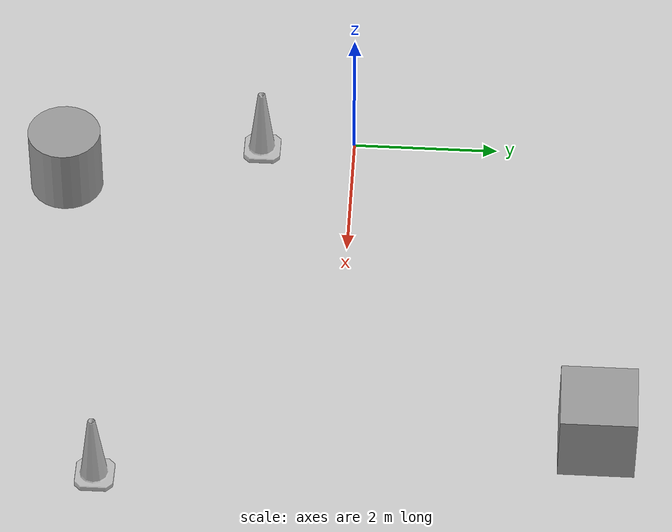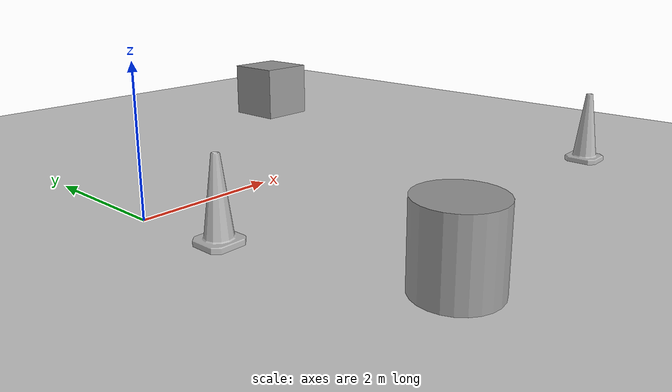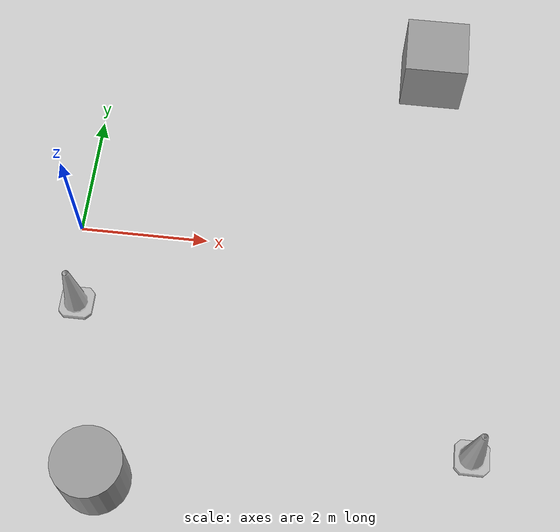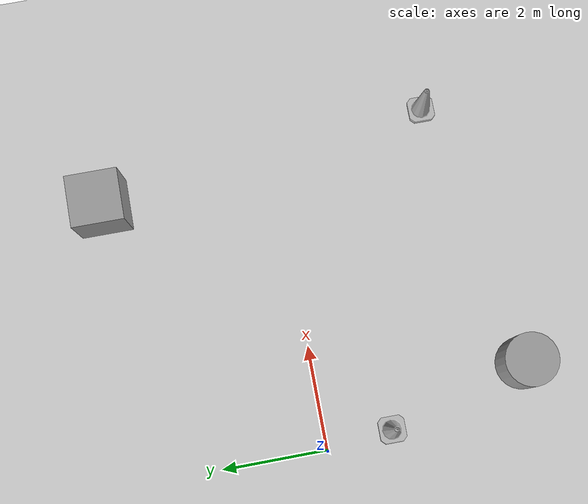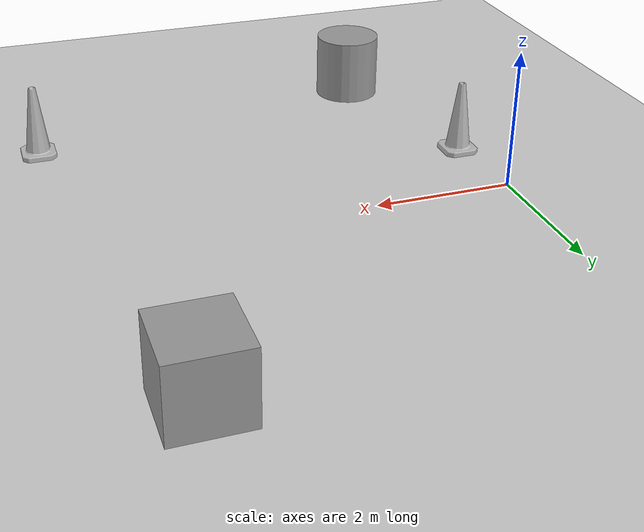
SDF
<?xml version="1.0" ?>
<sdf version="1.6">
  <world name="default">
    <light name='sun' type='directional'>
      <cast_shadows>1</cast_shadows>
      <pose>0 0 10 0 -0 0</pose>
      <diffuse>0.8 0.8 0.8 1</diffuse>
      <specular>0.2 0.2 0.2 1</specular>
      <direction>-0.5 0.1 -0.9</direction>
    </light>

    <physics type='ode'>
      <max_step_size>0.001</max_step_size>
      <real_time_factor>1</real_time_factor>
      <real_time_update_rate>1000</real_time_update_rate>
    </physics>

    <model name='ground_plane'>
      <static>true</static>
      <link name='link'>
        <collision name='collision'>
          <geometry>
            <plane>
              <normal>0 0 1</normal>
              <size>100 100</size>
            </plane>
          </geometry>
          <surface>
            <friction>
              <ode>
                <mu>1.0</mu>
                <mu2>1.0</mu2>
              </ode>
            </friction>
            <contact>
              <ode>
                <kp>1e+13</kp>
                <kd>1</kd>
              </ode>
            </contact>
          </surface>
        </collision>
        <visual name='visual'>
          <cast_shadows>0</cast_shadows>
          <geometry>
            <plane>
              <normal>0 0 1</normal>
              <size>100 100</size>
            </plane>
          </geometry>
          <material>
            <script>
              <uri>file://media/materials/scripts/gazebo.material</uri>
              <name>Gazebo/Grey</name>
            </script>
          </material>
        </visual>
      </link>
    </model>

    <model name='Construction Cone'>
      <link name='link'>
        <collision name='collision'>
          <geometry>
            <mesh>
              <scale>10 10 10</scale>
              <uri>model://construction_cone/meshes/construction_cone.dae</uri>
            </mesh>
          </geometry>
          <max_contacts>10</max_contacts>
          <surface>
            <contact>
              <ode/>
            </contact>
            <bounce/>
            <friction>
              <torsional>
                <ode/>
              </torsional>
              <ode/>
            </friction>
          </surface>
        </collision>
        <visual name='visual'>
          <geometry>
            <mesh>
              <scale>10 10 10</scale>
              <uri>model://construction_cone/meshes/construction_cone.dae</uri>
            </mesh>
          </geometry>
        </visual>
        <self_collide>0</self_collide>
        <inertial>
          <pose>0 0 0 0 -0 0</pose>
          <inertia>
            <ixx>1</ixx>
            <ixy>0</ixy>
            <ixz>0</ixz>
            <iyy>1</iyy>
            <iyz>0</iyz>
            <izz>1</izz>
          </inertia>
          <mass>1</mass>
        </inertial>
        <enable_wind>0</enable_wind>
        <kinematic>0</kinematic>
      </link>
      <pose>0.164671 -1.27985 0 0 -0 0</pose>
    </model>

    <model name='unit_box'>
      <pose>5.36831 3.441 0.5 0 -0 0</pose>
      <link name='link'>
        <inertial>
          <mass>1</mass>
          <inertia>
            <ixx>0.166667</ixx>
            <ixy>0</ixy>
            <ixz>0</ixz>
            <iyy>0.166667</iyy>
            <iyz>0</iyz>
            <izz>0.166667</izz>
          </inertia>
          <pose>0 0 0 0 -0 0</pose>
        </inertial>
        <collision name='collision'>
          <geometry>
            <box>
              <size>1 1 1</size>
            </box>
          </geometry>
          <max_contacts>10</max_contacts>
          <surface>
            <contact>
              <ode/>
            </contact>
            <bounce/>
            <friction>
              <torsional>
                <ode/>
              </torsional>
              <ode/>
            </friction>
          </surface>
        </collision>
        <visual name='visual'>
          <geometry>
            <box>
              <size>1 1 1</size>
            </box>
          </geometry>
          <material>
            <script>
              <name>Gazebo/Grey</name>
              <uri>file://media/materials/scripts/gazebo.material</uri>
            </script>
          </material>
        </visual>
        <self_collide>0</self_collide>
        <enable_wind>0</enable_wind>
        <kinematic>0</kinematic>
      </link>
    </model>

    <model name='unit_cylinder'>
      <pose>0.955087 -3.94505 0.5 0 -0 0</pose>
      <link name='link'>
        <inertial>
          <mass>1</mass>
          <inertia>
            <ixx>0.145833</ixx>
            <ixy>0</ixy>
            <ixz>0</ixz>
            <iyy>0.145833</iyy>
            <iyz>0</iyz>
            <izz>0.125</izz>
          </inertia>
          <pose>0 0 0 0 -0 0</pose>
        </inertial>
        <collision name='collision'>
          <geometry>
            <cylinder>
              <radius>0.5</radius>
              <length>1</length>
            </cylinder>
          </geometry>
          <max_contacts>10</max_contacts>
          <surface>
            <contact>
              <ode/>
            </contact>
            <bounce/>
            <friction>
              <torsional>
                <ode/>
              </torsional>
              <ode/>
            </friction>
          </surface>
        </collision>
        <visual name='visual'>
          <geometry>
            <cylinder>
              <radius>0.5</radius>
              <length>1</length>
            </cylinder>
          </geometry>
          <material>
            <script>
              <name>Gazebo/Grey</name>
              <uri>file://media/materials/scripts/gazebo.material</uri>
            </script>
          </material>
        </visual>
        <self_collide>0</self_collide>
        <enable_wind>0</enable_wind>
        <kinematic>0</kinematic>
      </link>
    </model>

    <model name='Construction Cone_0'>
      <link name='link'>
        <collision name='collision'>
          <geometry>
            <mesh>
              <scale>10 10 10</scale>
              <uri>model://construction_cone/meshes/construction_cone.dae</uri>
            </mesh>
          </geometry>
          <max_contacts>10</max_contacts>
          <surface>
            <contact>
              <ode/>
            </contact>
            <bounce/>
            <friction>
              <torsional>
                <ode/>
              </torsional>
              <ode/>
            </friction>
          </surface>
        </collision>
        <visual name='visual'>
          <geometry>
            <mesh>
              <scale>10 10 10</scale>
              <uri>model://construction_cone/meshes/construction_cone.dae</uri>
            </mesh>
          </geometry>
        </visual>
        <self_collide>0</self_collide>
        <inertial>
          <pose>0 0 0 0 -0 0</pose>
          <inertia>
            <ixx>1</ixx>
            <ixy>0</ixy>
            <ixz>0</ixz>
            <iyy>1</iyy>
            <iyz>0</iyz>
            <izz>1</izz>
          </inertia>
          <mass>1</mass>
        </inertial>
        <enable_wind>0</enable_wind>
        <kinematic>0</kinematic>
      </link>
      <pose>6.24318 -3.05651 0 0 -0 0</pose>
    </model>

  </world>
</sdf>
